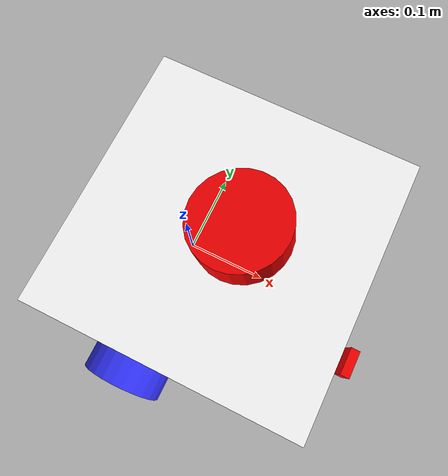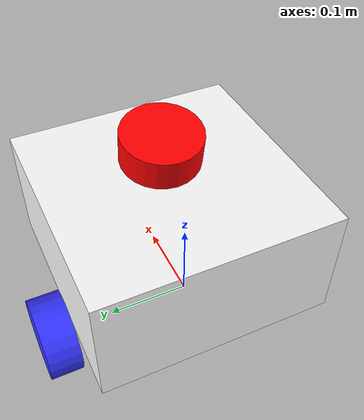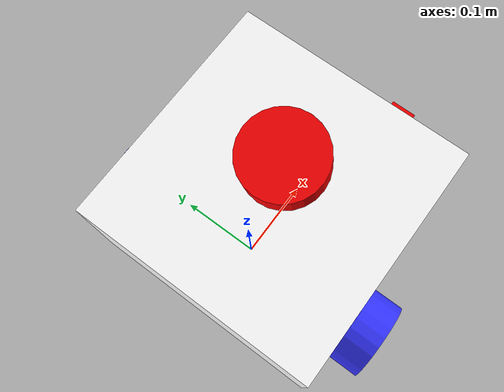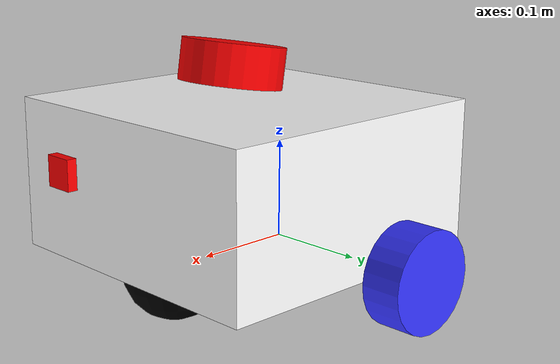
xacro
<?xml version="1.0"?>
<robot xmlns:xacro="http://www.ros.org/wiki/xacro"  name="robot">

    <xacro:arg name="use_ros2_control" default="true"/>
    <xacro:arg name="sim_mode" default="false"/>

    <xacro:include filename="robot_core.xacro" />

    <xacro:if value="$(arg use_ros2_control)">
        <xacro:include filename="ros2_control.xacro"/>
    </xacro:if>
    <xacro:unless value="$(arg use_ros2_control)">
        <xacro:include filename="gazebo_control.xacro"/>
    </xacro:unless>

    <xacro:include filename="lidar.xacro"/>

    <xacro:include filename="camera.xacro"/>

</robot>

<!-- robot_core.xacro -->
<robot xmlns:xacro="http://www.ros.org/wiki/xacro" >

    <xacro:include filename="inertial_macros.xacro"/>

    <material name="white">
        <color rgba="1.0 1.0 1.0 1.0"/>
    </material>

    <material name="orange">
        <color rgba="1.0 0.3 0.1 1.0"/>
    </material>

    <material name="blue">
        <color rgba="0.2 0.2 1.0 1.0"/>
    </material>

    <material name="black">
        <color rgba="0.0 0.0 0.0 1.0"/>
    </material>

    <material name="red">
        <color rgba="1.0 0.0 0.0 1.0"/>
    </material>

    <!-- BASE LINK-->

    <!-- Using diferential mobile robots its better to use de center of the two wheels as the base link-->
    <!-- Because all the geometry and turns(its going to be the center of rotation) will get easyer to get references from there-->
    <link name="base_link"></link>

    <!-- BASE_FOOTPRINT LINK necessary for slam_toolbox-->

    <joint name="base_footprint_joint" type="fixed">
        <origin xyz="0.0 0.0 0.0" rpy="0.0 0.0 0.0"/>
        <parent link="base_link"/>
        <child link="base_footprint"/>
    </joint>

    <link name="base_footprint">
    </link>

    <!-- CHASIS LINK -->

    <!-- the origin of the chassis will be just behind the center of rotation-->
    <joint name="chase_joint" type="fixed">
        <origin xyz="-0.1 0.0 0.0" rpy="0.0 0.0 0.0"/>
        <parent link="base_link"/>
        <child link="chassis_link"/>
    </joint>

    <link name="chassis_link">
        <visual name="">
            <origin xyz="0.15 0.0 0.075" rpy="0.0 0.0 0.0"/>
            <geometry>
                <box size="0.3 0.3 0.15"/>
            </geometry>
            <material name="white"/>
        </visual>
        <collision>
            <origin xyz="0.15 0.0 0.075" rpy="0.0 0.0 0.0"/>
            <geometry>
                <box size="0.3 0.3 0.15"/>
            </geometry>
        </collision>
        <xacro:inertial_box mass="0.5" x="0.3" y="0.3" z="0.15">
            <origin xyz="0.15 0.0 0.075" rpy="0.0 0.0 0.0"/>
        </xacro:inertial_box>
    </link>

    <gazebo reference="chassis_link">
        <material>Gazebo/White</material>
    </gazebo>

    <!-- LEFT WHEEL LINK -->

    <!-- continuous because it will tourn around continuously-->
    <!-- the z axis must be pointing to the horizontal and out of the robot-->
    <joint name="left_wheel_joint" type="continuous">
        <origin xyz="0.0 0.175 0.0" rpy="-${pi/2} 0.0 0.0"/>
        <parent link="base_link"/>
        <child link="left_wheel_link"/>
        <axis xyz="0.0 0.0 1.0"/>
        <limit lower="0.0" upper="0.0" effort="0.0" velocity="0.0"/>
    </joint>

    <link name="left_wheel_link">
        <visual name="">
            <origin xyz="0.0 0.0 0.0" rpy="0.0 0.0 0.0"/>
            <geometry>
                <cylinder radius="0.05" length="0.04"/>
            </geometry>
            <material name="blue" />
        </visual>
        <collision>
            <origin xyz="0.0 0.0 0.0" rpy="0.0 0.0 0.0"/>
            <geometry>
                <cylinder radius="0.05" length="0.04"/>
            </geometry>
        </collision>
        <xacro:inertial_cylinder mass="0.1" length="0.04" radius="0.05">
            <origin xyz="0.0 0.0 0.0" rpy="0.0 0.0 0.0"/>
        </xacro:inertial_cylinder>
    </link>

    <gazebo reference="left_wheel_link">
        <material>Gazebo/Blue</material>
    </gazebo>

    <!-- RIGHT WHEEL LINK -->

    <!-- continuous because it will tourn around continuously-->
    <!-- the z axis must be pointing to the horizontal and out of the robot-->
    <joint name="right_wheel_joint" type="continuous">
        <origin xyz="0.0 -0.175 0.0" rpy="${pi/2} 0.0 0.0"/>
        <parent link="base_link"/>
        <child link="right_wheel_link"/>
        <axis xyz="0.0 0.0 -1.0"/>
        <limit lower="0.0" upper="0.0" effort="0.0" velocity="0.0"/>
    </joint>

    <link name="right_wheel_link">
        <visual name="">
            <origin xyz="0.0 0.0 0.0" rpy="0.0 0.0 0.0"/>
            <geometry>
                <cylinder radius="0.05" length="0.04"/>
            </geometry>
            <material name="blue" />
        </visual>
        <collision>
            <origin xyz="0.0 0.0 0.0" rpy="0.0 0.0 0.0"/>
            <geometry>
                <cylinder radius="0.05" length="0.04"/>
            </geometry>
        </collision>
        <xacro:inertial_cylinder mass="0.1" length="0.04" radius="0.05">
            <origin xyz="0.0 0.0 0.0" rpy="0.0 0.0 0.0"/>
        </xacro:inertial_cylinder>
    </link>

    <gazebo reference="right_wheel_link">
        <material>Gazebo/Blue</material>
    </gazebo>

    <!-- CASTER WHEEL LINK -->

    <!-- fixed because of little bit of cheating-->
    <!-- the z axis must be pointing to the horizontal and out of the robot-->
    <joint name="caster_wheel_joint" type="fixed">
        <origin xyz="0.24 0.0 0.0" rpy="0.0 0.0 0.0"/>
        <parent link="chassis_link"/>
        <child link="caster_wheel_link"/>
    </joint>

    <link name="caster_wheel_link">
        <visual name="">
            <origin xyz="0.0 0.0 0.0" rpy="0.0 0.0 0.0"/>
            <geometry>
                <sphere radius="0.05"/>
            </geometry>
            <material name="black" />
        </visual>
        <collision>
            <origin xyz="0.0 0.0 0.0" rpy="0.0 0.0 0.0"/>
            <geometry>
                <sphere radius="0.05"/>
            </geometry>
        </collision>
        <xacro:inertial_sphere mass="0.1" radius="0.05">
            <origin xyz="0.0 0.0 0.0" rpy="0.0 0.0 0.0"/>
        </xacro:inertial_sphere>
    </link>

    <gazebo reference="caster_wheel_link">
        <material>Gazebo/Black</material>
        <mu1 value="0.0001"/>
        <mu2 value="0.0001"/>
    </gazebo>

</robot>

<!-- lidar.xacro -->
<robot xmlns:xacro="http://www.ros.org/wiki/xacro" >

    <joint name="laser_joint" type="fixed">
        <origin xyz="0.165 0.0 0.185" rpy="0.0 -0.15652 0.0"/>
        <parent link="chassis_link"/>
        <child link="laser_frame"/>
    </joint>

    <link name="laser_frame">
        <visual name="">
            <origin xyz="0.0 0.0 0.0" rpy="0.0 0.0 0.0"/>
            <geometry>
                <cylinder radius="0.05" length="0.04"/>
            </geometry>
            <material name="red" />
        </visual>
        <collision>
            <origin xyz="0.0 0.0 0.0" rpy="0.0 0.0 0.0"/>
            <geometry>
                <cylinder radius="0.05" length="0.04"/>
            </geometry>
        </collision>
        <xacro:inertial_cylinder mass="0.1" length="0.04" radius="0.05">
            <origin xyz="0.0 0.0 0.0" rpy="0.0 0.0 0.0"/>
        </xacro:inertial_cylinder>
    </link>

    <gazebo reference="laser_frame">
        <material>Gazebo/Red</material>

        <sensor name="laser" type="gpu_lidar">
            <pose> 0 0 0 0 0 0</pose>
            <visualize>false</visualize>
            <update_rate>10</update_rate>
            <lidar>
                <scan>
                    <horizontal>
                        <samples>360</samples>
                        <min_angle>-3.14</min_angle>
                        <max_angle>3.14</max_angle>
                    </horizontal>
                </scan>
                <range>
                    <min>0.3</min>
                    <max>12</max>
                    <resolution>0.01</resolution>
                </range>
            </lidar>
            <topic>scan</topic>
            <gz_frame_id>laser_frame</gz_frame_id>
        </sensor>
    </gazebo>

</robot>

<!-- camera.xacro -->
<robot xmlns:xacro="http://www.ros.org/wiki/xacro" >

    <joint name="camera_joint" type="fixed">
        <origin xyz="0.32 -0.06 0.095" rpy="0.0 0.0 0.0"/>
        <parent link="chassis_link"/>
        <child link="camera_link"/>
    </joint>

    <!-- The camera is integrated on the chassis(no strick out), so there is no need of colision and inertia -->
    <!-- It is also on a fixed joint, so there is no need of inertial component -->
    <link name="camera_link">
        <visual name="">
            <origin xyz="0.0 0.0 0.0" rpy="0.0 0.0 0.0"/>
            <geometry>
                <box size="0.01 0.03 0.03"/>
            </geometry>
            <material name="red" />
        </visual>
    </link>

    <!-- Convert from standard roos coordinate (z to the up direction) to the camera standard coords (z point to the front)-->
    <joint name="camera_optical_joint" type="fixed">
        <origin xyz="0.0 0.0 0.0" rpy="${-pi/2} 0 -${pi/2}"/>
        <parent link="camera_link"/>
        <child link="camera_link_optical"/>
    </joint>

    <link name="camera_link_optical"></link>

    <gazebo reference="camera_link">
        <material>Gazebo/Red</material>
        <!-- change the type to depth instead of camera if you want a RGBD camera and the image format to B8G8R8-->
        <!-- and a min and max depth plugins params-->
        <sensor name="camera" type="camera">
            <pose> 0 0 0 0 0 0</pose>
            <visualize>false</visualize>
            <update_rate>10</update_rate>
            <camera>
                <camera_info_topic>camera/camera_info</camera_info_topic>
                <horizontal_fov>1.089</horizontal_fov>
                <image>
                    <format>R8G8B8</format>
                    <width>640</width>
                    <height>480</height>
                </image>
                <clip>
                    <near>0.05</near>
                    <far>8.0</far>
                </clip>
            </camera>
            <topic>camera/image_raw</topic>
            <gz_frame_id>camera_link_optical</gz_frame_id>
        </sensor>
    </gazebo>

</robot>
